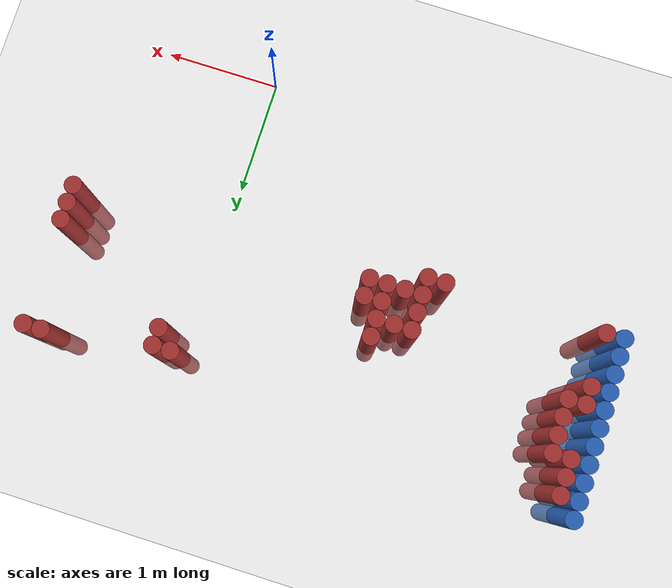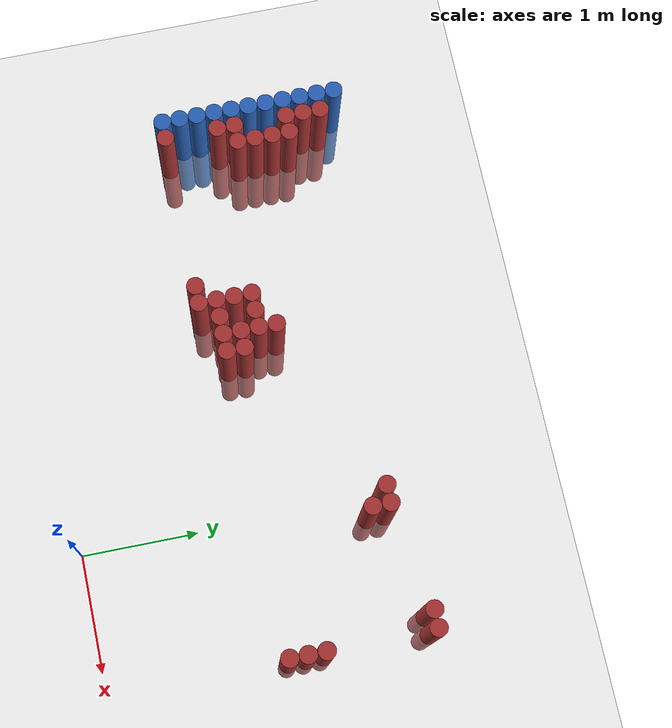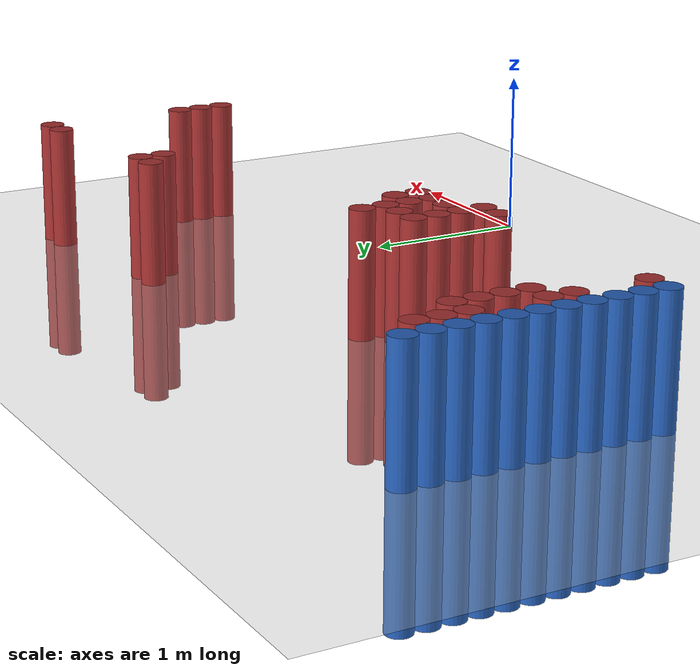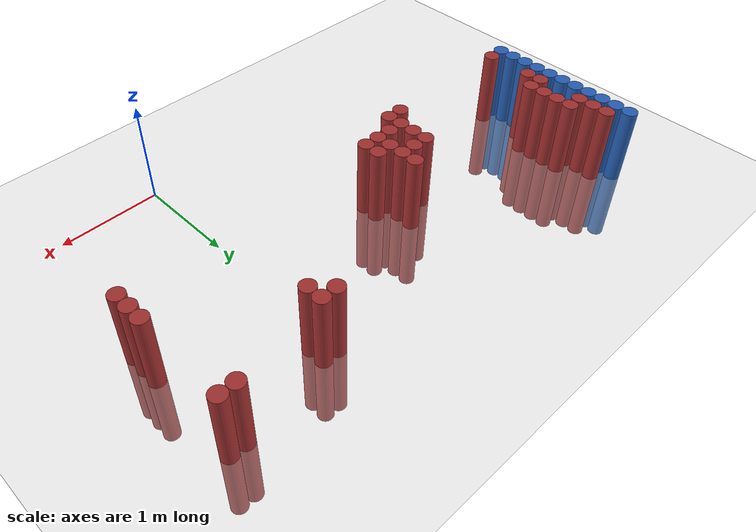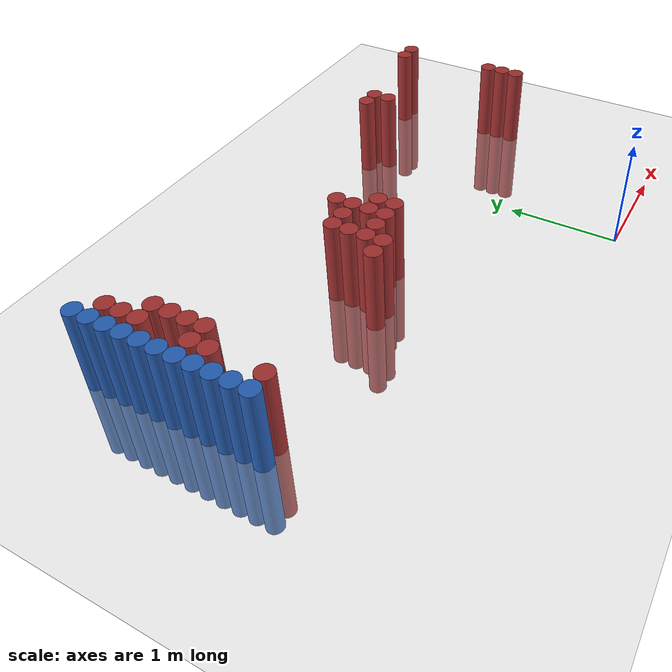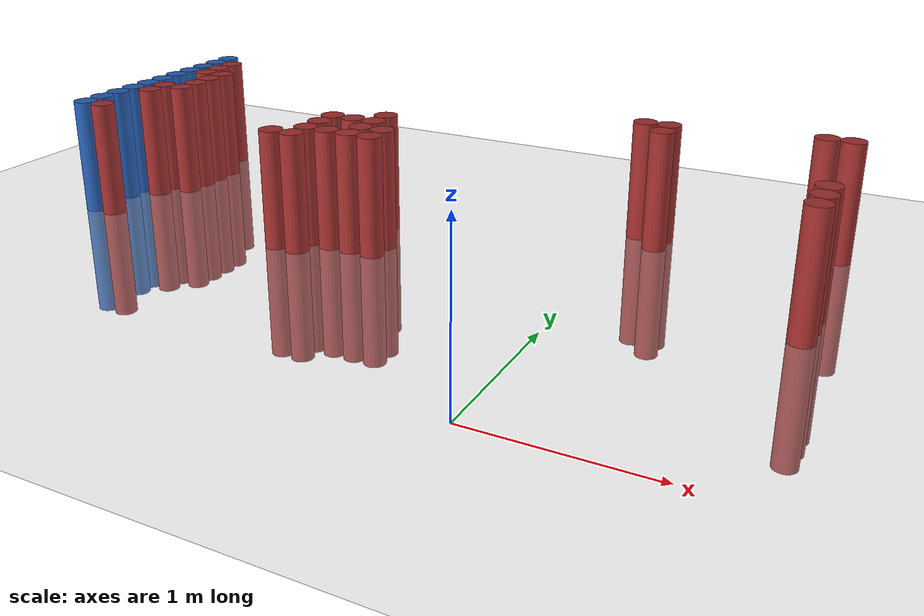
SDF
<sdf version="1.6">
 <world name="default">
  <model name="ground_plane">
   <static>1</static>
   <link name="link">
    <collision name="collision">
     <geometry><plane><normal>0 0 1</normal><size>100 100</size></plane></geometry>
     <surface><friction><ode><mu>100</mu><mu2>50</mu2></ode></friction></surface>
    </collision>
    <visual name="visual">
     <cast_shadows>0</cast_shadows>
     <geometry><plane><normal>0 0 1</normal><size>100 100</size></plane></geometry>
     <material>
      <script><uri>file://media/materials/scripts/gazebo.material</uri><name>Gazebo/Grey</name></script>
     </material>
    </visual>
   </link>
  </model>
  <model name="unit_cylinder_133">
   <static>1</static>
   <pose>-3.425000 1.375000 0.000000 0.000000 0.000000 0.000000</pose>
   <link name="link">
    <inertial>
     <mass>1</mass>
     <inertia><ixx>0.145833</ixx><ixy>0</ixy><ixz>0</ixz><iyy>0.145833</iyy><iyz>0</iyz><izz>0.125</izz></inertia>
    </inertial>
    <collision name="collision">
     <geometry><cylinder><radius>0.075000</radius><length>1.5</length></cylinder></geometry>
    </collision>
    <visual name="visual">
     <geometry><cylinder><radius>0.075000</radius><length>1.5</length></cylinder></geometry>
     <material>
      <ambient>0.152000 0.379000 0.720000 1</ambient>
      <diffuse>0.152000 0.379000 0.720000 1</diffuse>
     </material>
     <material>
      <script><name>Gazebo/Grey</name><uri>file://media/materials/scripts/gazebo.material</uri></script>
     </material>
    </visual>
   </link>
  </model>
  <model name="unit_cylinder_135">
   <static>1</static>
   <pose>-3.425000 1.525000 0.000000 0.000000 0.000000 0.000000</pose>
   <link name="link">
    <inertial>
     <mass>1</mass>
     <inertia><ixx>0.145833</ixx><ixy>0</ixy><ixz>0</ixz><iyy>0.145833</iyy><iyz>0</iyz><izz>0.125</izz></inertia>
    </inertial>
    <collision name="collision">
     <geometry><cylinder><radius>0.075000</radius><length>1.5</length></cylinder></geometry>
    </collision>
    <visual name="visual">
     <geometry><cylinder><radius>0.075000</radius><length>1.5</length></cylinder></geometry>
     <material>
      <ambient>0.152000 0.379000 0.720000 1</ambient>
      <diffuse>0.152000 0.379000 0.720000 1</diffuse>
     </material>
     <material>
      <script><name>Gazebo/Grey</name><uri>file://media/materials/scripts/gazebo.material</uri></script>
     </material>
    </visual>
   </link>
  </model>
  <model name="unit_cylinder_137">
   <static>1</static>
   <pose>-3.425000 1.675000 0.000000 0.000000 0.000000 0.000000</pose>
   <link name="link">
    <inertial>
     <mass>1</mass>
     <inertia><ixx>0.145833</ixx><ixy>0</ixy><ixz>0</ixz><iyy>0.145833</iyy><iyz>0</iyz><izz>0.125</izz></inertia>
    </inertial>
    <collision name="collision">
     <geometry><cylinder><radius>0.075000</radius><length>1.5</length></cylinder></geometry>
    </collision>
    <visual name="visual">
     <geometry><cylinder><radius>0.075000</radius><length>1.5</length></cylinder></geometry>
     <material>
      <ambient>0.152000 0.379000 0.720000 1</ambient>
      <diffuse>0.152000 0.379000 0.720000 1</diffuse>
     </material>
     <material>
      <script><name>Gazebo/Grey</name><uri>file://media/materials/scripts/gazebo.material</uri></script>
     </material>
    </visual>
   </link>
  </model>
  <model name="unit_cylinder_139">
   <static>1</static>
   <pose>-3.425000 1.825000 0.000000 0.000000 0.000000 0.000000</pose>
   <link name="link">
    <inertial>
     <mass>1</mass>
     <inertia><ixx>0.145833</ixx><ixy>0</ixy><ixz>0</ixz><iyy>0.145833</iyy><iyz>0</iyz><izz>0.125</izz></inertia>
    </inertial>
    <collision name="collision">
     <geometry><cylinder><radius>0.075000</radius><length>1.5</length></cylinder></geometry>
    </collision>
    <visual name="visual">
     <geometry><cylinder><radius>0.075000</radius><length>1.5</length></cylinder></geometry>
     <material>
      <ambient>0.152000 0.379000 0.720000 1</ambient>
      <diffuse>0.152000 0.379000 0.720000 1</diffuse>
     </material>
     <material>
      <script><name>Gazebo/Grey</name><uri>file://media/materials/scripts/gazebo.material</uri></script>
     </material>
    </visual>
   </link>
  </model>
  <model name="unit_cylinder_141">
   <static>1</static>
   <pose>-3.425000 1.975000 0.000000 0.000000 0.000000 0.000000</pose>
   <link name="link">
    <inertial>
     <mass>1</mass>
     <inertia><ixx>0.145833</ixx><ixy>0</ixy><ixz>0</ixz><iyy>0.145833</iyy><iyz>0</iyz><izz>0.125</izz></inertia>
    </inertial>
    <collision name="collision">
     <geometry><cylinder><radius>0.075000</radius><length>1.5</length></cylinder></geometry>
    </collision>
    <visual name="visual">
     <geometry><cylinder><radius>0.075000</radius><length>1.5</length></cylinder></geometry>
     <material>
      <ambient>0.152000 0.379000 0.720000 1</ambient>
      <diffuse>0.152000 0.379000 0.720000 1</diffuse>
     </material>
     <material>
      <script><name>Gazebo/Grey</name><uri>file://media/materials/scripts/gazebo.material</uri></script>
     </material>
    </visual>
   </link>
  </model>
  <model name="unit_cylinder_143">
   <static>1</static>
   <pose>-3.425000 2.125000 0.000000 0.000000 0.000000 0.000000</pose>
   <link name="link">
    <inertial>
     <mass>1</mass>
     <inertia><ixx>0.145833</ixx><ixy>0</ixy><ixz>0</ixz><iyy>0.145833</iyy><iyz>0</iyz><izz>0.125</izz></inertia>
    </inertial>
    <collision name="collision">
     <geometry><cylinder><radius>0.075000</radius><length>1.5</length></cylinder></geometry>
    </collision>
    <visual name="visual">
     <geometry><cylinder><radius>0.075000</radius><length>1.5</length></cylinder></geometry>
     <material>
      <ambient>0.152000 0.379000 0.720000 1</ambient>
      <diffuse>0.152000 0.379000 0.720000 1</diffuse>
     </material>
     <material>
      <script><name>Gazebo/Grey</name><uri>file://media/materials/scripts/gazebo.material</uri></script>
     </material>
    </visual>
   </link>
  </model>
  <model name="unit_cylinder_145">
   <static>1</static>
   <pose>-3.425000 2.275000 0.000000 0.000000 0.000000 0.000000</pose>
   <link name="link">
    <inertial>
     <mass>1</mass>
     <inertia><ixx>0.145833</ixx><ixy>0</ixy><ixz>0</ixz><iyy>0.145833</iyy><iyz>0</iyz><izz>0.125</izz></inertia>
    </inertial>
    <collision name="collision">
     <geometry><cylinder><radius>0.075000</radius><length>1.5</length></cylinder></geometry>
    </collision>
    <visual name="visual">
     <geometry><cylinder><radius>0.075000</radius><length>1.5</length></cylinder></geometry>
     <material>
      <ambient>0.152000 0.379000 0.720000 1</ambient>
      <diffuse>0.152000 0.379000 0.720000 1</diffuse>
     </material>
     <material>
      <script><name>Gazebo/Grey</name><uri>file://media/materials/scripts/gazebo.material</uri></script>
     </material>
    </visual>
   </link>
  </model>
  <model name="unit_cylinder_147">
   <static>1</static>
   <pose>-3.425000 2.425000 0.000000 0.000000 0.000000 0.000000</pose>
   <link name="link">
    <inertial>
     <mass>1</mass>
     <inertia><ixx>0.145833</ixx><ixy>0</ixy><ixz>0</ixz><iyy>0.145833</iyy><iyz>0</iyz><izz>0.125</izz></inertia>
    </inertial>
    <collision name="collision">
     <geometry><cylinder><radius>0.075000</radius><length>1.5</length></cylinder></geometry>
    </collision>
    <visual name="visual">
     <geometry><cylinder><radius>0.075000</radius><length>1.5</length></cylinder></geometry>
     <material>
      <ambient>0.152000 0.379000 0.720000 1</ambient>
      <diffuse>0.152000 0.379000 0.720000 1</diffuse>
     </material>
     <material>
      <script><name>Gazebo/Grey</name><uri>file://media/materials/scripts/gazebo.material</uri></script>
     </material>
    </visual>
   </link>
  </model>
  <model name="unit_cylinder_149">
   <static>1</static>
   <pose>-3.425000 2.575000 0.000000 0.000000 0.000000 0.000000</pose>
   <link name="link">
    <inertial>
     <mass>1</mass>
     <inertia><ixx>0.145833</ixx><ixy>0</ixy><ixz>0</ixz><iyy>0.145833</iyy><iyz>0</iyz><izz>0.125</izz></inertia>
    </inertial>
    <collision name="collision">
     <geometry><cylinder><radius>0.075000</radius><length>1.5</length></cylinder></geometry>
    </collision>
    <visual name="visual">
     <geometry><cylinder><radius>0.075000</radius><length>1.5</length></cylinder></geometry>
     <material>
      <ambient>0.152000 0.379000 0.720000 1</ambient>
      <diffuse>0.152000 0.379000 0.720000 1</diffuse>
     </material>
     <material>
      <script><name>Gazebo/Grey</name><uri>file://media/materials/scripts/gazebo.material</uri></script>
     </material>
    </visual>
   </link>
  </model>
  <model name="unit_cylinder_151">
   <static>1</static>
   <pose>-3.425000 2.725000 0.000000 0.000000 0.000000 0.000000</pose>
   <link name="link">
    <inertial>
     <mass>1</mass>
     <inertia><ixx>0.145833</ixx><ixy>0</ixy><ixz>0</ixz><iyy>0.145833</iyy><iyz>0</iyz><izz>0.125</izz></inertia>
    </inertial>
    <collision name="collision">
     <geometry><cylinder><radius>0.075000</radius><length>1.5</length></cylinder></geometry>
    </collision>
    <visual name="visual">
     <geometry><cylinder><radius>0.075000</radius><length>1.5</length></cylinder></geometry>
     <material>
      <ambient>0.152000 0.379000 0.720000 1</ambient>
      <diffuse>0.152000 0.379000 0.720000 1</diffuse>
     </material>
     <material>
      <script><name>Gazebo/Grey</name><uri>file://media/materials/scripts/gazebo.material</uri></script>
     </material>
    </visual>
   </link>
  </model>
  <model name="unit_cylinder_153">
   <static>1</static>
   <pose>-3.425000 2.875000 0.000000 0.000000 0.000000 0.000000</pose>
   <link name="link">
    <inertial>
     <mass>1</mass>
     <inertia><ixx>0.145833</ixx><ixy>0</ixy><ixz>0</ixz><iyy>0.145833</iyy><iyz>0</iyz><izz>0.125</izz></inertia>
    </inertial>
    <collision name="collision">
     <geometry><cylinder><radius>0.075000</radius><length>1.5</length></cylinder></geometry>
    </collision>
    <visual name="visual">
     <geometry><cylinder><radius>0.075000</radius><length>1.5</length></cylinder></geometry>
     <material>
      <ambient>0.152000 0.379000 0.720000 1</ambient>
      <diffuse>0.152000 0.379000 0.720000 1</diffuse>
     </material>
     <material>
      <script><name>Gazebo/Grey</name><uri>file://media/materials/scripts/gazebo.material</uri></script>
     </material>
    </visual>
   </link>
  </model>
  <model name="unit_cylinder_230">
   <static>1</static>
   <pose>-3.425000 1.375000 0.000000 0.000000 0.000000 0.000000</pose>
   <link name="link">
    <inertial>
     <mass>1</mass>
     <inertia><ixx>0.145833</ixx><ixy>0</ixy><ixz>0</ixz><iyy>0.145833</iyy><iyz>0</iyz><izz>0.125</izz></inertia>
    </inertial>
    <collision name="collision">
     <geometry><cylinder><radius>0.075000</radius><length>1.5</length></cylinder></geometry>
    </collision>
    <visual name="visual">
     <geometry><cylinder><radius>0.075000</radius><length>1.5</length></cylinder></geometry>
     <material>
      <ambient>0.152000 0.379000 0.720000 1</ambient>
      <diffuse>0.152000 0.379000 0.720000 1</diffuse>
     </material>
     <material>
      <script><name>Gazebo/Grey</name><uri>file://media/materials/scripts/gazebo.material</uri></script>
     </material>
    </visual>
   </link>
  </model>
  <model name="unit_cylinder_231">
   <static>1</static>
   <pose>-3.425000 1.525000 0.000000 0.000000 0.000000 0.000000</pose>
   <link name="link">
    <inertial>
     <mass>1</mass>
     <inertia><ixx>0.145833</ixx><ixy>0</ixy><ixz>0</ixz><iyy>0.145833</iyy><iyz>0</iyz><izz>0.125</izz></inertia>
    </inertial>
    <collision name="collision">
     <geometry><cylinder><radius>0.075000</radius><length>1.5</length></cylinder></geometry>
    </collision>
    <visual name="visual">
     <geometry><cylinder><radius>0.075000</radius><length>1.5</length></cylinder></geometry>
     <material>
      <ambient>0.152000 0.379000 0.720000 1</ambient>
      <diffuse>0.152000 0.379000 0.720000 1</diffuse>
     </material>
     <material>
      <script><name>Gazebo/Grey</name><uri>file://media/materials/scripts/gazebo.material</uri></script>
     </material>
    </visual>
   </link>
  </model>
  <model name="unit_cylinder_232">
   <static>1</static>
   <pose>-3.425000 1.675000 0.000000 0.000000 0.000000 0.000000</pose>
   <link name="link">
    <inertial>
     <mass>1</mass>
     <inertia><ixx>0.145833</ixx><ixy>0</ixy><ixz>0</ixz><iyy>0.145833</iyy><iyz>0</iyz><izz>0.125</izz></inertia>
    </inertial>
    <collision name="collision">
     <geometry><cylinder><radius>0.075000</radius><length>1.5</length></cylinder></geometry>
    </collision>
    <visual name="visual">
     <geometry><cylinder><radius>0.075000</radius><length>1.5</length></cylinder></geometry>
     <material>
      <ambient>0.152000 0.379000 0.720000 1</ambient>
      <diffuse>0.152000 0.379000 0.720000 1</diffuse>
     </material>
     <material>
      <script><name>Gazebo/Grey</name><uri>file://media/materials/scripts/gazebo.material</uri></script>
     </material>
    </visual>
   </link>
  </model>
  <model name="unit_cylinder_233">
   <static>1</static>
   <pose>-3.425000 1.825000 0.000000 0.000000 0.000000 0.000000</pose>
   <link name="link">
    <inertial>
     <mass>1</mass>
     <inertia><ixx>0.145833</ixx><ixy>0</ixy><ixz>0</ixz><iyy>0.145833</iyy><iyz>0</iyz><izz>0.125</izz></inertia>
    </inertial>
    <collision name="collision">
     <geometry><cylinder><radius>0.075000</radius><length>1.5</length></cylinder></geometry>
    </collision>
    <visual name="visual">
     <geometry><cylinder><radius>0.075000</radius><length>1.5</length></cylinder></geometry>
     <material>
      <ambient>0.152000 0.379000 0.720000 1</ambient>
      <diffuse>0.152000 0.379000 0.720000 1</diffuse>
     </material>
     <material>
      <script><name>Gazebo/Grey</name><uri>file://media/materials/scripts/gazebo.material</uri></script>
     </material>
    </visual>
   </link>
  </model>
  <model name="unit_cylinder_234">
   <static>1</static>
   <pose>-3.425000 1.975000 0.000000 0.000000 0.000000 0.000000</pose>
   <link name="link">
    <inertial>
     <mass>1</mass>
     <inertia><ixx>0.145833</ixx><ixy>0</ixy><ixz>0</ixz><iyy>0.145833</iyy><iyz>0</iyz><izz>0.125</izz></inertia>
    </inertial>
    <collision name="collision">
     <geometry><cylinder><radius>0.075000</radius><length>1.5</length></cylinder></geometry>
    </collision>
    <visual name="visual">
     <geometry><cylinder><radius>0.075000</radius><length>1.5</length></cylinder></geometry>
     <material>
      <ambient>0.152000 0.379000 0.720000 1</ambient>
      <diffuse>0.152000 0.379000 0.720000 1</diffuse>
     </material>
     <material>
      <script><name>Gazebo/Grey</name><uri>file://media/materials/scripts/gazebo.material</uri></script>
     </material>
    </visual>
   </link>
  </model>
  <model name="unit_cylinder_235">
   <static>1</static>
   <pose>-3.425000 2.125000 0.000000 0.000000 0.000000 0.000000</pose>
   <link name="link">
    <inertial>
     <mass>1</mass>
     <inertia><ixx>0.145833</ixx><ixy>0</ixy><ixz>0</ixz><iyy>0.145833</iyy><iyz>0</iyz><izz>0.125</izz></inertia>
    </inertial>
    <collision name="collision">
     <geometry><cylinder><radius>0.075000</radius><length>1.5</length></cylinder></geometry>
    </collision>
    <visual name="visual">
     <geometry><cylinder><radius>0.075000</radius><length>1.5</length></cylinder></geometry>
     <material>
      <ambient>0.152000 0.379000 0.720000 1</ambient>
      <diffuse>0.152000 0.379000 0.720000 1</diffuse>
     </material>
     <material>
      <script><name>Gazebo/Grey</name><uri>file://media/materials/scripts/gazebo.material</uri></script>
     </material>
    </visual>
   </link>
  </model>
  <model name="unit_cylinder_236">
   <static>1</static>
   <pose>-3.425000 2.275000 0.000000 0.000000 0.000000 0.000000</pose>
   <link name="link">
    <inertial>
     <mass>1</mass>
     <inertia><ixx>0.145833</ixx><ixy>0</ixy><ixz>0</ixz><iyy>0.145833</iyy><iyz>0</iyz><izz>0.125</izz></inertia>
    </inertial>
    <collision name="collision">
     <geometry><cylinder><radius>0.075000</radius><length>1.5</length></cylinder></geometry>
    </collision>
    <visual name="visual">
     <geometry><cylinder><radius>0.075000</radius><length>1.5</length></cylinder></geometry>
     <material>
      <ambient>0.152000 0.379000 0.720000 1</ambient>
      <diffuse>0.152000 0.379000 0.720000 1</diffuse>
     </material>
     <material>
      <script><name>Gazebo/Grey</name><uri>file://media/materials/scripts/gazebo.material</uri></script>
     </material>
    </visual>
   </link>
  </model>
  <model name="unit_cylinder_237">
   <static>1</static>
   <pose>-3.425000 2.425000 0.000000 0.000000 0.000000 0.000000</pose>
   <link name="link">
    <inertial>
     <mass>1</mass>
     <inertia><ixx>0.145833</ixx><ixy>0</ixy><ixz>0</ixz><iyy>0.145833</iyy><iyz>0</iyz><izz>0.125</izz></inertia>
    </inertial>
    <collision name="collision">
     <geometry><cylinder><radius>0.075000</radius><length>1.5</length></cylinder></geometry>
    </collision>
    <visual name="visual">
     <geometry><cylinder><radius>0.075000</radius><length>1.5</length></cylinder></geometry>
     <material>
      <ambient>0.152000 0.379000 0.720000 1</ambient>
      <diffuse>0.152000 0.379000 0.720000 1</diffuse>
     </material>
     <material>
      <script><name>Gazebo/Grey</name><uri>file://media/materials/scripts/gazebo.material</uri></script>
     </material>
    </visual>
   </link>
  </model>
  <model name="unit_cylinder_238">
   <static>1</static>
   <pose>-3.425000 2.575000 0.000000 0.000000 0.000000 0.000000</pose>
   <link name="link">
    <inertial>
     <mass>1</mass>
     <inertia><ixx>0.145833</ixx><ixy>0</ixy><ixz>0</ixz><iyy>0.145833</iyy><iyz>0</iyz><izz>0.125</izz></inertia>
    </inertial>
    <collision name="collision">
     <geometry><cylinder><radius>0.075000</radius><length>1.5</length></cylinder></geometry>
    </collision>
    <visual name="visual">
     <geometry><cylinder><radius>0.075000</radius><length>1.5</length></cylinder></geometry>
     <material>
      <ambient>0.152000 0.379000 0.720000 1</ambient>
      <diffuse>0.152000 0.379000 0.720000 1</diffuse>
     </material>
     <material>
      <script><name>Gazebo/Grey</name><uri>file://media/materials/scripts/gazebo.material</uri></script>
     </material>
    </visual>
   </link>
  </model>
  <model name="unit_cylinder_239">
   <static>1</static>
   <pose>-3.425000 2.725000 0.000000 0.000000 0.000000 0.000000</pose>
   <link name="link">
    <inertial>
     <mass>1</mass>
     <inertia><ixx>0.145833</ixx><ixy>0</ixy><ixz>0</ixz><iyy>0.145833</iyy><iyz>0</iyz><izz>0.125</izz></inertia>
    </inertial>
    <collision name="collision">
     <geometry><cylinder><radius>0.075000</radius><length>1.5</length></cylinder></geometry>
    </collision>
    <visual name="visual">
     <geometry><cylinder><radius>0.075000</radius><length>1.5</length></cylinder></geometry>
     <material>
      <ambient>0.152000 0.379000 0.720000 1</ambient>
      <diffuse>0.152000 0.379000 0.720000 1</diffuse>
     </material>
     <material>
      <script><name>Gazebo/Grey</name><uri>file://media/materials/scripts/gazebo.material</uri></script>
     </material>
    </visual>
   </link>
  </model>
  <model name="unit_cylinder_269">
   <static>1</static>
   <pose>-3.275000 1.375000 0.000000 0.000000 0.000000 0.000000</pose>
   <link name="link">
    <inertial>
     <mass>1</mass>
     <inertia><ixx>0.145833</ixx><ixy>0</ixy><ixz>0</ixz><iyy>0.145833</iyy><iyz>0</iyz><izz>0.125</izz></inertia>
    </inertial>
    <collision name="collision">
     <geometry><cylinder><radius>0.075000</radius><length>1.5</length></cylinder></geometry>
    </collision>
    <visual name="visual">
     <geometry><cylinder><radius>0.075000</radius><length>1.5</length></cylinder></geometry>
     <material>
      <ambient>0.648000 0.192000 0.192000 1</ambient>
      <diffuse>0.648000 0.192000 0.192000 1</diffuse>
     </material>
     <material>
      <script><name>Gazebo/Grey</name><uri>file://media/materials/scripts/gazebo.material</uri></script>
     </material>
    </visual>
   </link>
  </model>
  <model name="unit_cylinder_270">
   <static>1</static>
   <pose>-3.275000 1.825000 0.000000 0.000000 0.000000 0.000000</pose>
   <link name="link">
    <inertial>
     <mass>1</mass>
     <inertia><ixx>0.145833</ixx><ixy>0</ixy><ixz>0</ixz><iyy>0.145833</iyy><iyz>0</iyz><izz>0.125</izz></inertia>
    </inertial>
    <collision name="collision">
     <geometry><cylinder><radius>0.075000</radius><length>1.5</length></cylinder></geometry>
    </collision>
    <visual name="visual">
     <geometry><cylinder><radius>0.075000</radius><length>1.5</length></cylinder></geometry>
     <material>
      <ambient>0.648000 0.192000 0.192000 1</ambient>
      <diffuse>0.648000 0.192000 0.192000 1</diffuse>
     </material>
     <material>
      <script><name>Gazebo/Grey</name><uri>file://media/materials/scripts/gazebo.material</uri></script>
     </material>
    </visual>
   </link>
  </model>
  <model name="unit_cylinder_271">
   <static>1</static>
   <pose>-3.275000 1.975000 0.000000 0.000000 0.000000 0.000000</pose>
   <link name="link">
    <inertial>
     <mass>1</mass>
     <inertia><ixx>0.145833</ixx><ixy>0</ixy><ixz>0</ixz><iyy>0.145833</iyy><iyz>0</iyz><izz>0.125</izz></inertia>
    </inertial>
    <collision name="collision">
     <geometry><cylinder><radius>0.075000</radius><length>1.5</length></cylinder></geometry>
    </collision>
    <visual name="visual">
     <geometry><cylinder><radius>0.075000</radius><length>1.5</length></cylinder></geometry>
     <material>
      <ambient>0.648000 0.192000 0.192000 1</ambient>
      <diffuse>0.648000 0.192000 0.192000 1</diffuse>
     </material>
     <material>
      <script><name>Gazebo/Grey</name><uri>file://media/materials/scripts/gazebo.material</uri></script>
     </material>
    </visual>
   </link>
  </model>
  <model name="unit_cylinder_272">
   <static>1</static>
   <pose>-3.275000 2.425000 0.000000 0.000000 0.000000 0.000000</pose>
   <link name="link">
    <inertial>
     <mass>1</mass>
     <inertia><ixx>0.145833</ixx><ixy>0</ixy><ixz>0</ixz><iyy>0.145833</iyy><iyz>0</iyz><izz>0.125</izz></inertia>
    </inertial>
    <collision name="collision">
     <geometry><cylinder><radius>0.075000</radius><length>1.5</length></cylinder></geometry>
    </collision>
    <visual name="visual">
     <geometry><cylinder><radius>0.075000</radius><length>1.5</length></cylinder></geometry>
     <material>
      <ambient>0.648000 0.192000 0.192000 1</ambient>
      <diffuse>0.648000 0.192000 0.192000 1</diffuse>
     </material>
     <material>
      <script><name>Gazebo/Grey</name><uri>file://media/materials/scripts/gazebo.material</uri></script>
     </material>
    </visual>
   </link>
  </model>
  <model name="unit_cylinder_273">
   <static>1</static>
   <pose>-3.275000 2.575000 0.000000 0.000000 0.000000 0.000000</pose>
   <link name="link">
    <inertial>
     <mass>1</mass>
     <inertia><ixx>0.145833</ixx><ixy>0</ixy><ixz>0</ixz><iyy>0.145833</iyy><iyz>0</iyz><izz>0.125</izz></inertia>
    </inertial>
    <collision name="collision">
     <geometry><cylinder><radius>0.075000</radius><length>1.5</length></cylinder></geometry>
    </collision>
    <visual name="visual">
     <geometry><cylinder><radius>0.075000</radius><length>1.5</length></cylinder></geometry>
     <material>
      <ambient>0.648000 0.192000 0.192000 1</ambient>
      <diffuse>0.648000 0.192000 0.192000 1</diffuse>
     </material>
     <material>
      <script><name>Gazebo/Grey</name><uri>file://media/materials/scripts/gazebo.material</uri></script>
     </material>
    </visual>
   </link>
  </model>
  <model name="unit_cylinder_274">
   <static>1</static>
   <pose>-3.275000 2.725000 0.000000 0.000000 0.000000 0.000000</pose>
   <link name="link">
    <inertial>
     <mass>1</mass>
     <inertia><ixx>0.145833</ixx><ixy>0</ixy><ixz>0</ixz><iyy>0.145833</iyy><iyz>0</iyz><izz>0.125</izz></inertia>
    </inertial>
    <collision name="collision">
     <geometry><cylinder><radius>0.075000</radius><length>1.5</length></cylinder></geometry>
    </collision>
    <visual name="visual">
     <geometry><cylinder><radius>0.075000</radius><length>1.5</length></cylinder></geometry>
     <material>
      <ambient>0.648000 0.192000 0.192000 1</ambient>
      <diffuse>0.648000 0.192000 0.192000 1</diffuse>
     </material>
     <material>
      <script><name>Gazebo/Grey</name><uri>file://media/materials/scripts/gazebo.material</uri></script>
     </material>
    </visual>
   </link>
  </model>
  <model name="unit_cylinder_295">
   <static>1</static>
   <pose>-3.125000 1.975000 0.000000 0.000000 0.000000 0.000000</pose>
   <link name="link">
    <inertial>
     <mass>1</mass>
     <inertia><ixx>0.145833</ixx><ixy>0</ixy><ixz>0</ixz><iyy>0.145833</iyy><iyz>0</iyz><izz>0.125</izz></inertia>
    </inertial>
    <collision name="collision">
     <geometry><cylinder><radius>0.075000</radius><length>1.5</length></cylinder></geometry>
    </collision>
    <visual name="visual">
     <geometry><cylinder><radius>0.075000</radius><length>1.5</length></cylinder></geometry>
     <material>
      <ambient>0.648000 0.192000 0.192000 1</ambient>
      <diffuse>0.648000 0.192000 0.192000 1</diffuse>
     </material>
     <material>
      <script><name>Gazebo/Grey</name><uri>file://media/materials/scripts/gazebo.material</uri></script>
     </material>
    </visual>
   </link>
  </model>
  <model name="unit_cylinder_296">
   <static>1</static>
   <pose>-3.125000 2.125000 0.000000 0.000000 0.000000 0.000000</pose>
   <link name="link">
    <inertial>
     <mass>1</mass>
     <inertia><ixx>0.145833</ixx><ixy>0</ixy><ixz>0</ixz><iyy>0.145833</iyy><iyz>0</iyz><izz>0.125</izz></inertia>
    </inertial>
    <collision name="collision">
     <geometry><cylinder><radius>0.075000</radius><length>1.5</length></cylinder></geometry>
    </collision>
    <visual name="visual">
     <geometry><cylinder><radius>0.075000</radius><length>1.5</length></cylinder></geometry>
     <material>
      <ambient>0.648000 0.192000 0.192000 1</ambient>
      <diffuse>0.648000 0.192000 0.192000 1</diffuse>
     </material>
     <material>
      <script><name>Gazebo/Grey</name><uri>file://media/materials/scripts/gazebo.material</uri></script>
     </material>
    </visual>
   </link>
  </model>
  <model name="unit_cylinder_297">
   <static>1</static>
   <pose>-3.125000 2.275000 0.000000 0.000000 0.000000 0.000000</pose>
   <link name="link">
    <inertial>
     <mass>1</mass>
     <inertia><ixx>0.145833</ixx><ixy>0</ixy><ixz>0</ixz><iyy>0.145833</iyy><iyz>0</iyz><izz>0.125</izz></inertia>
    </inertial>
    <collision name="collision">
     <geometry><cylinder><radius>0.075000</radius><length>1.5</length></cylinder></geometry>
    </collision>
    <visual name="visual">
     <geometry><cylinder><radius>0.075000</radius><length>1.5</length></cylinder></geometry>
     <material>
      <ambient>0.648000 0.192000 0.192000 1</ambient>
      <diffuse>0.648000 0.192000 0.192000 1</diffuse>
     </material>
     <material>
      <script><name>Gazebo/Grey</name><uri>file://media/materials/scripts/gazebo.material</uri></script>
     </material>
    </visual>
   </link>
  </model>
  <model name="unit_cylinder_298">
   <static>1</static>
   <pose>-3.125000 2.425000 0.000000 0.000000 0.000000 0.000000</pose>
   <link name="link">
    <inertial>
     <mass>1</mass>
     <inertia><ixx>0.145833</ixx><ixy>0</ixy><ixz>0</ixz><iyy>0.145833</iyy><iyz>0</iyz><izz>0.125</izz></inertia>
    </inertial>
    <collision name="collision">
     <geometry><cylinder><radius>0.075000</radius><length>1.5</length></cylinder></geometry>
    </collision>
    <visual name="visual">
     <geometry><cylinder><radius>0.075000</radius><length>1.5</length></cylinder></geometry>
     <material>
      <ambient>0.648000 0.192000 0.192000 1</ambient>
      <diffuse>0.648000 0.192000 0.192000 1</diffuse>
     </material>
     <material>
      <script><name>Gazebo/Grey</name><uri>file://media/materials/scripts/gazebo.material</uri></script>
     </material>
    </visual>
   </link>
  </model>
  <model name="unit_cylinder_336">
   <static>1</static>
   <pose>-1.925000 1.375000 0.000000 0.000000 0.000000 0.000000</pose>
   <link name="link">
    <inertial>
     <mass>1</mass>
     <inertia><ixx>0.145833</ixx><ixy>0</ixy><ixz>0</ixz><iyy>0.145833</iyy><iyz>0</iyz><izz>0.125</izz></inertia>
    </inertial>
    <collision name="collision">
     <geometry><cylinder><radius>0.075000</radius><length>1.5</length></cylinder></geometry>
    </collision>
    <visual name="visual">
     <geometry><cylinder><radius>0.075000</radius><length>1.5</length></cylinder></geometry>
     <material>
      <ambient>0.648000 0.192000 0.192000 1</ambient>
      <diffuse>0.648000 0.192000 0.192000 1</diffuse>
     </material>
     <material>
      <script><name>Gazebo/Grey</name><uri>file://media/materials/scripts/gazebo.material</uri></script>
     </material>
    </visual>
   </link>
  </model>
  <model name="unit_cylinder_338">
   <static>1</static>
   <pose>-1.775000 1.375000 0.000000 0.000000 0.000000 0.000000</pose>
   <link name="link">
    <inertial>
     <mass>1</mass>
     <inertia><ixx>0.145833</ixx><ixy>0</ixy><ixz>0</ixz><iyy>0.145833</iyy><iyz>0</iyz><izz>0.125</izz></inertia>
    </inertial>
    <collision name="collision">
     <geometry><cylinder><radius>0.075000</radius><length>1.5</length></cylinder></geometry>
    </collision>
    <visual name="visual">
     <geometry><cylinder><radius>0.075000</radius><length>1.5</length></cylinder></geometry>
     <material>
      <ambient>0.648000 0.192000 0.192000 1</ambient>
      <diffuse>0.648000 0.192000 0.192000 1</diffuse>
     </material>
     <material>
      <script><name>Gazebo/Grey</name><uri>file://media/materials/scripts/gazebo.material</uri></script>
     </material>
    </visual>
   </link>
  </model>
  <model name="unit_cylinder_339">
   <static>1</static>
   <pose>-1.775000 1.525000 0.000000 0.000000 0.000000 0.000000</pose>
   <link name="link">
    <inertial>
     <mass>1</mass>
     <inertia><ixx>0.145833</ixx><ixy>0</ixy><ixz>0</ixz><iyy>0.145833</iyy><iyz>0</iyz><izz>0.125</izz></inertia>
    </inertial>
    <collision name="collision">
     <geometry><cylinder><radius>0.075000</radius><length>1.5</length></cylinder></geometry>
    </collision>
    <visual name="visual">
     <geometry><cylinder><radius>0.075000</radius><length>1.5</length></cylinder></geometry>
     <material>
      <ambient>0.648000 0.192000 0.192000 1</ambient>
      <diffuse>0.648000 0.192000 0.192000 1</diffuse>
     </material>
     <material>
      <script><name>Gazebo/Grey</name><uri>file://media/materials/scripts/gazebo.material</uri></script>
     </material>
    </visual>
   </link>
  </model>
  <model name="unit_cylinder_340">
   <static>1</static>
   <pose>-1.775000 1.675000 0.000000 0.000000 0.000000 0.000000</pose>
   <link name="link">
    <inertial>
     <mass>1</mass>
     <inertia><ixx>0.145833</ixx><ixy>0</ixy><ixz>0</ixz><iyy>0.145833</iyy><iyz>0</iyz><izz>0.125</izz></inertia>
    </inertial>
    <collision name="collision">
     <geometry><cylinder><radius>0.075000</radius><length>1.5</length></cylinder></geometry>
    </collision>
    <visual name="visual">
     <geometry><cylinder><radius>0.075000</radius><length>1.5</length></cylinder></geometry>
     <material>
      <ambient>0.648000 0.192000 0.192000 1</ambient>
      <diffuse>0.648000 0.192000 0.192000 1</diffuse>
     </material>
     <material>
      <script><name>Gazebo/Grey</name><uri>file://media/materials/scripts/gazebo.material</uri></script>
     </material>
    </visual>
   </link>
  </model>
  <model name="unit_cylinder_341">
   <static>1</static>
   <pose>-1.775000 1.825000 0.000000 0.000000 0.000000 0.000000</pose>
   <link name="link">
    <inertial>
     <mass>1</mass>
     <inertia><ixx>0.145833</ixx><ixy>0</ixy><ixz>0</ixz><iyy>0.145833</iyy><iyz>0</iyz><izz>0.125</izz></inertia>
    </inertial>
    <collision name="collision">
     <geometry><cylinder><radius>0.075000</radius><length>1.5</length></cylinder></geometry>
    </collision>
    <visual name="visual">
     <geometry><cylinder><radius>0.075000</radius><length>1.5</length></cylinder></geometry>
     <material>
      <ambient>0.648000 0.192000 0.192000 1</ambient>
      <diffuse>0.648000 0.192000 0.192000 1</diffuse>
     </material>
     <material>
      <script><name>Gazebo/Grey</name><uri>file://media/materials/scripts/gazebo.material</uri></script>
     </material>
    </visual>
   </link>
  </model>
  <model name="unit_cylinder_343">
   <static>1</static>
   <pose>-1.625000 1.525000 0.000000 0.000000 0.000000 0.000000</pose>
   <link name="link">
    <inertial>
     <mass>1</mass>
     <inertia><ixx>0.145833</ixx><ixy>0</ixy><ixz>0</ixz><iyy>0.145833</iyy><iyz>0</iyz><izz>0.125</izz></inertia>
    </inertial>
    <collision name="collision">
     <geometry><cylinder><radius>0.075000</radius><length>1.5</length></cylinder></geometry>
    </collision>
    <visual name="visual">
     <geometry><cylinder><radius>0.075000</radius><length>1.5</length></cylinder></geometry>
     <material>
      <ambient>0.648000 0.192000 0.192000 1</ambient>
      <diffuse>0.648000 0.192000 0.192000 1</diffuse>
     </material>
     <material>
      <script><name>Gazebo/Grey</name><uri>file://media/materials/scripts/gazebo.material</uri></script>
     </material>
    </visual>
   </link>
  </model>
  <model name="unit_cylinder_344">
   <static>1</static>
   <pose>-1.625000 1.825000 0.000000 0.000000 0.000000 0.000000</pose>
   <link name="link">
    <inertial>
     <mass>1</mass>
     <inertia><ixx>0.145833</ixx><ixy>0</ixy><ixz>0</ixz><iyy>0.145833</iyy><iyz>0</iyz><izz>0.125</izz></inertia>
    </inertial>
    <collision name="collision">
     <geometry><cylinder><radius>0.075000</radius><length>1.5</length></cylinder></geometry>
    </collision>
    <visual name="visual">
     <geometry><cylinder><radius>0.075000</radius><length>1.5</length></cylinder></geometry>
     <material>
      <ambient>0.648000 0.192000 0.192000 1</ambient>
      <diffuse>0.648000 0.192000 0.192000 1</diffuse>
     </material>
     <material>
      <script><name>Gazebo/Grey</name><uri>file://media/materials/scripts/gazebo.material</uri></script>
     </material>
    </visual>
   </link>
  </model>
  <model name="unit_cylinder_347">
   <static>1</static>
   <pose>-1.475000 1.525000 0.000000 0.000000 0.000000 0.000000</pose>
   <link name="link">
    <inertial>
     <mass>1</mass>
     <inertia><ixx>0.145833</ixx><ixy>0</ixy><ixz>0</ixz><iyy>0.145833</iyy><iyz>0</iyz><izz>0.125</izz></inertia>
    </inertial>
    <collision name="collision">
     <geometry><cylinder><radius>0.075000</radius><length>1.5</length></cylinder></geometry>
    </collision>
    <visual name="visual">
     <geometry><cylinder><radius>0.075000</radius><length>1.5</length></cylinder></geometry>
     <material>
      <ambient>0.648000 0.192000 0.192000 1</ambient>
      <diffuse>0.648000 0.192000 0.192000 1</diffuse>
     </material>
     <material>
      <script><name>Gazebo/Grey</name><uri>file://media/materials/scripts/gazebo.material</uri></script>
     </material>
    </visual>
   </link>
  </model>
  <model name="unit_cylinder_348">
   <static>1</static>
   <pose>-1.475000 1.675000 0.000000 0.000000 0.000000 0.000000</pose>
   <link name="link">
    <inertial>
     <mass>1</mass>
     <inertia><ixx>0.145833</ixx><ixy>0</ixy><ixz>0</ixz><iyy>0.145833</iyy><iyz>0</iyz><izz>0.125</izz></inertia>
    </inertial>
    <collision name="collision">
     <geometry><cylinder><radius>0.075000</radius><length>1.5</length></cylinder></geometry>
    </collision>
    <visual name="visual">
     <geometry><cylinder><radius>0.075000</radius><length>1.5</length></cylinder></geometry>
     <material>
      <ambient>0.648000 0.192000 0.192000 1</ambient>
      <diffuse>0.648000 0.192000 0.192000 1</diffuse>
     </material>
     <material>
      <script><name>Gazebo/Grey</name><uri>file://media/materials/scripts/gazebo.material</uri></script>
     </material>
    </visual>
   </link>
  </model>
  <model name="unit_cylinder_349">
   <static>1</static>
   <pose>-1.475000 1.825000 0.000000 0.000000 0.000000 0.000000</pose>
   <link name="link">
    <inertial>
     <mass>1</mass>
     <inertia><ixx>0.145833</ixx><ixy>0</ixy><ixz>0</ixz><iyy>0.145833</iyy><iyz>0</iyz><izz>0.125</izz></inertia>
    </inertial>
    <collision name="collision">
     <geometry><cylinder><radius>0.075000</radius><length>1.5</length></cylinder></geometry>
    </collision>
    <visual name="visual">
     <geometry><cylinder><radius>0.075000</radius><length>1.5</length></cylinder></geometry>
     <material>
      <ambient>0.648000 0.192000 0.192000 1</ambient>
      <diffuse>0.648000 0.192000 0.192000 1</diffuse>
     </material>
     <material>
      <script><name>Gazebo/Grey</name><uri>file://media/materials/scripts/gazebo.material</uri></script>
     </material>
    </visual>
   </link>
  </model>
  <model name="unit_cylinder_350">
   <static>1</static>
   <pose>-1.475000 1.975000 0.000000 0.000000 0.000000 0.000000</pose>
   <link name="link">
    <inertial>
     <mass>1</mass>
     <inertia><ixx>0.145833</ixx><ixy>0</ixy><ixz>0</ixz><iyy>0.145833</iyy><iyz>0</iyz><izz>0.125</izz></inertia>
    </inertial>
    <collision name="collision">
     <geometry><cylinder><radius>0.075000</radius><length>1.5</length></cylinder></geometry>
    </collision>
    <visual name="visual">
     <geometry><cylinder><radius>0.075000</radius><length>1.5</length></cylinder></geometry>
     <material>
      <ambient>0.648000 0.192000 0.192000 1</ambient>
      <diffuse>0.648000 0.192000 0.192000 1</diffuse>
     </material>
     <material>
      <script><name>Gazebo/Grey</name><uri>file://media/materials/scripts/gazebo.material</uri></script>
     </material>
    </visual>
   </link>
  </model>
  <model name="unit_cylinder_351">
   <static>1</static>
   <pose>-1.325000 1.525000 0.000000 0.000000 0.000000 0.000000</pose>
   <link name="link">
    <inertial>
     <mass>1</mass>
     <inertia><ixx>0.145833</ixx><ixy>0</ixy><ixz>0</ixz><iyy>0.145833</iyy><iyz>0</iyz><izz>0.125</izz></inertia>
    </inertial>
    <collision name="collision">
     <geometry><cylinder><radius>0.075000</radius><length>1.5</length></cylinder></geometry>
    </collision>
    <visual name="visual">
     <geometry><cylinder><radius>0.075000</radius><length>1.5</length></cylinder></geometry>
     <material>
      <ambient>0.648000 0.192000 0.192000 1</ambient>
      <diffuse>0.648000 0.192000 0.192000 1</diffuse>
     </material>
     <material>
      <script><name>Gazebo/Grey</name><uri>file://media/materials/scripts/gazebo.material</uri></script>
     </material>
    </visual>
   </link>
  </model>
  <model name="unit_cylinder_352">
   <static>1</static>
   <pose>-1.325000 1.675000 0.000000 0.000000 0.000000 0.000000</pose>
   <link name="link">
    <inertial>
     <mass>1</mass>
     <inertia><ixx>0.145833</ixx><ixy>0</ixy><ixz>0</ixz><iyy>0.145833</iyy><iyz>0</iyz><izz>0.125</izz></inertia>
    </inertial>
    <collision name="collision">
     <geometry><cylinder><radius>0.075000</radius><length>1.5</length></cylinder></geometry>
    </collision>
    <visual name="visual">
     <geometry><cylinder><radius>0.075000</radius><length>1.5</length></cylinder></geometry>
     <material>
      <ambient>0.648000 0.192000 0.192000 1</ambient>
      <diffuse>0.648000 0.192000 0.192000 1</diffuse>
     </material>
     <material>
      <script><name>Gazebo/Grey</name><uri>file://media/materials/scripts/gazebo.material</uri></script>
     </material>
    </visual>
   </link>
  </model>
  <model name="unit_cylinder_383">
   <static>1</static>
   <pose>0.025000 2.575000 0.000000 0.000000 0.000000 0.000000</pose>
   <link name="link">
    <inertial>
     <mass>1</mass>
     <inertia><ixx>0.145833</ixx><ixy>0</ixy><ixz>0</ixz><iyy>0.145833</iyy><iyz>0</iyz><izz>0.125</izz></inertia>
    </inertial>
    <collision name="collision">
     <geometry><cylinder><radius>0.075000</radius><length>1.5</length></cylinder></geometry>
    </collision>
    <visual name="visual">
     <geometry><cylinder><radius>0.075000</radius><length>1.5</length></cylinder></geometry>
     <material>
      <ambient>0.648000 0.192000 0.192000 1</ambient>
      <diffuse>0.648000 0.192000 0.192000 1</diffuse>
     </material>
     <material>
      <script><name>Gazebo/Grey</name><uri>file://media/materials/scripts/gazebo.material</uri></script>
     </material>
    </visual>
   </link>
  </model>
  <model name="unit_cylinder_386">
   <static>1</static>
   <pose>0.175000 2.425000 0.000000 0.000000 0.000000 0.000000</pose>
   <link name="link">
    <inertial>
     <mass>1</mass>
     <inertia><ixx>0.145833</ixx><ixy>0</ixy><ixz>0</ixz><iyy>0.145833</iyy><iyz>0</iyz><izz>0.125</izz></inertia>
    </inertial>
    <collision name="collision">
     <geometry><cylinder><radius>0.075000</radius><length>1.5</length></cylinder></geometry>
    </collision>
    <visual name="visual">
     <geometry><cylinder><radius>0.075000</radius><length>1.5</length></cylinder></geometry>
     <material>
      <ambient>0.648000 0.192000 0.192000 1</ambient>
      <diffuse>0.648000 0.192000 0.192000 1</diffuse>
     </material>
     <material>
      <script><name>Gazebo/Grey</name><uri>file://media/materials/scripts/gazebo.material</uri></script>
     </material>
    </visual>
   </link>
  </model>
  <model name="unit_cylinder_387">
   <static>1</static>
   <pose>0.175000 2.575000 0.000000 0.000000 0.000000 0.000000</pose>
   <link name="link">
    <inertial>
     <mass>1</mass>
     <inertia><ixx>0.145833</ixx><ixy>0</ixy><ixz>0</ixz><iyy>0.145833</iyy><iyz>0</iyz><izz>0.125</izz></inertia>
    </inertial>
    <collision name="collision">
     <geometry><cylinder><radius>0.075000</radius><length>1.5</length></cylinder></geometry>
    </collision>
    <visual name="visual">
     <geometry><cylinder><radius>0.075000</radius><length>1.5</length></cylinder></geometry>
     <material>
      <ambient>0.648000 0.192000 0.192000 1</ambient>
      <diffuse>0.648000 0.192000 0.192000 1</diffuse>
     </material>
     <material>
      <script><name>Gazebo/Grey</name><uri>file://media/materials/scripts/gazebo.material</uri></script>
     </material>
    </visual>
   </link>
  </model>
  <model name="unit_cylinder_404">
   <static>1</static>
   <pose>1.075000 2.725000 0.000000 0.000000 0.000000 0.000000</pose>
   <link name="link">
    <inertial>
     <mass>1</mass>
     <inertia><ixx>0.145833</ixx><ixy>0</ixy><ixz>0</ixz><iyy>0.145833</iyy><iyz>0</iyz><izz>0.125</izz></inertia>
    </inertial>
    <collision name="collision">
     <geometry><cylinder><radius>0.075000</radius><length>1.5</length></cylinder></geometry>
    </collision>
    <visual name="visual">
     <geometry><cylinder><radius>0.075000</radius><length>1.5</length></cylinder></geometry>
     <material>
      <ambient>0.648000 0.192000 0.192000 1</ambient>
      <diffuse>0.648000 0.192000 0.192000 1</diffuse>
     </material>
     <material>
      <script><name>Gazebo/Grey</name><uri>file://media/materials/scripts/gazebo.material</uri></script>
     </material>
    </visual>
   </link>
  </model>
  <model name="unit_cylinder_411">
   <static>1</static>
   <pose>1.225000 1.525000 0.000000 0.000000 0.000000 0.000000</pose>
   <link name="link">
    <inertial>
     <mass>1</mass>
     <inertia><ixx>0.145833</ixx><ixy>0</ixy><ixz>0</ixz><iyy>0.145833</iyy><iyz>0</iyz><izz>0.125</izz></inertia>
    </inertial>
    <collision name="collision">
     <geometry><cylinder><radius>0.075000</radius><length>1.5</length></cylinder></geometry>
    </collision>
    <visual name="visual">
     <geometry><cylinder><radius>0.075000</radius><length>1.5</length></cylinder></geometry>
     <material>
      <ambient>0.648000 0.192000 0.192000 1</ambient>
      <diffuse>0.648000 0.192000 0.192000 1</diffuse>
     </material>
     <material>
      <script><name>Gazebo/Grey</name><uri>file://media/materials/scripts/gazebo.material</uri></script>
     </material>
    </visual>
   </link>
  </model>
  <model name="unit_cylinder_412">
   <static>1</static>
   <pose>1.225000 1.675000 0.000000 0.000000 0.000000 0.000000</pose>
   <link name="link">
    <inertial>
     <mass>1</mass>
     <inertia><ixx>0.145833</ixx><ixy>0</ixy><ixz>0</ixz><iyy>0.145833</iyy><iyz>0</iyz><izz>0.125</izz></inertia>
    </inertial>
    <collision name="collision">
     <geometry><cylinder><radius>0.075000</radius><length>1.5</length></cylinder></geometry>
    </collision>
    <visual name="visual">
     <geometry><cylinder><radius>0.075000</radius><length>1.5</length></cylinder></geometry>
     <material>
      <ambient>0.648000 0.192000 0.192000 1</ambient>
      <diffuse>0.648000 0.192000 0.192000 1</diffuse>
     </material>
     <material>
      <script><name>Gazebo/Grey</name><uri>file://media/materials/scripts/gazebo.material</uri></script>
     </material>
    </visual>
   </link>
  </model>
  <model name="unit_cylinder_413">
   <static>1</static>
   <pose>1.225000 1.825000 0.000000 0.000000 0.000000 0.000000</pose>
   <link name="link">
    <inertial>
     <mass>1</mass>
     <inertia><ixx>0.145833</ixx><ixy>0</ixy><ixz>0</ixz><iyy>0.145833</iyy><iyz>0</iyz><izz>0.125</izz></inertia>
    </inertial>
    <collision name="collision">
     <geometry><cylinder><radius>0.075000</radius><length>1.5</length></cylinder></geometry>
    </collision>
    <visual name="visual">
     <geometry><cylinder><radius>0.075000</radius><length>1.5</length></cylinder></geometry>
     <material>
      <ambient>0.648000 0.192000 0.192000 1</ambient>
      <diffuse>0.648000 0.192000 0.192000 1</diffuse>
     </material>
     <material>
      <script><name>Gazebo/Grey</name><uri>file://media/materials/scripts/gazebo.material</uri></script>
     </material>
    </visual>
   </link>
  </model>
  <model name="unit_cylinder_414">
   <static>1</static>
   <pose>1.225000 2.725000 0.000000 0.000000 0.000000 0.000000</pose>
   <link name="link">
    <inertial>
     <mass>1</mass>
     <inertia><ixx>0.145833</ixx><ixy>0</ixy><ixz>0</ixz><iyy>0.145833</iyy><iyz>0</iyz><izz>0.125</izz></inertia>
    </inertial>
    <collision name="collision">
     <geometry><cylinder><radius>0.075000</radius><length>1.5</length></cylinder></geometry>
    </collision>
    <visual name="visual">
     <geometry><cylinder><radius>0.075000</radius><length>1.5</length></cylinder></geometry>
     <material>
      <ambient>0.648000 0.192000 0.192000 1</ambient>
      <diffuse>0.648000 0.192000 0.192000 1</diffuse>
     </material>
     <material>
      <script><name>Gazebo/Grey</name><uri>file://media/materials/scripts/gazebo.material</uri></script>
     </material>
    </visual>
   </link>
  </model>
 </world>
</sdf>
